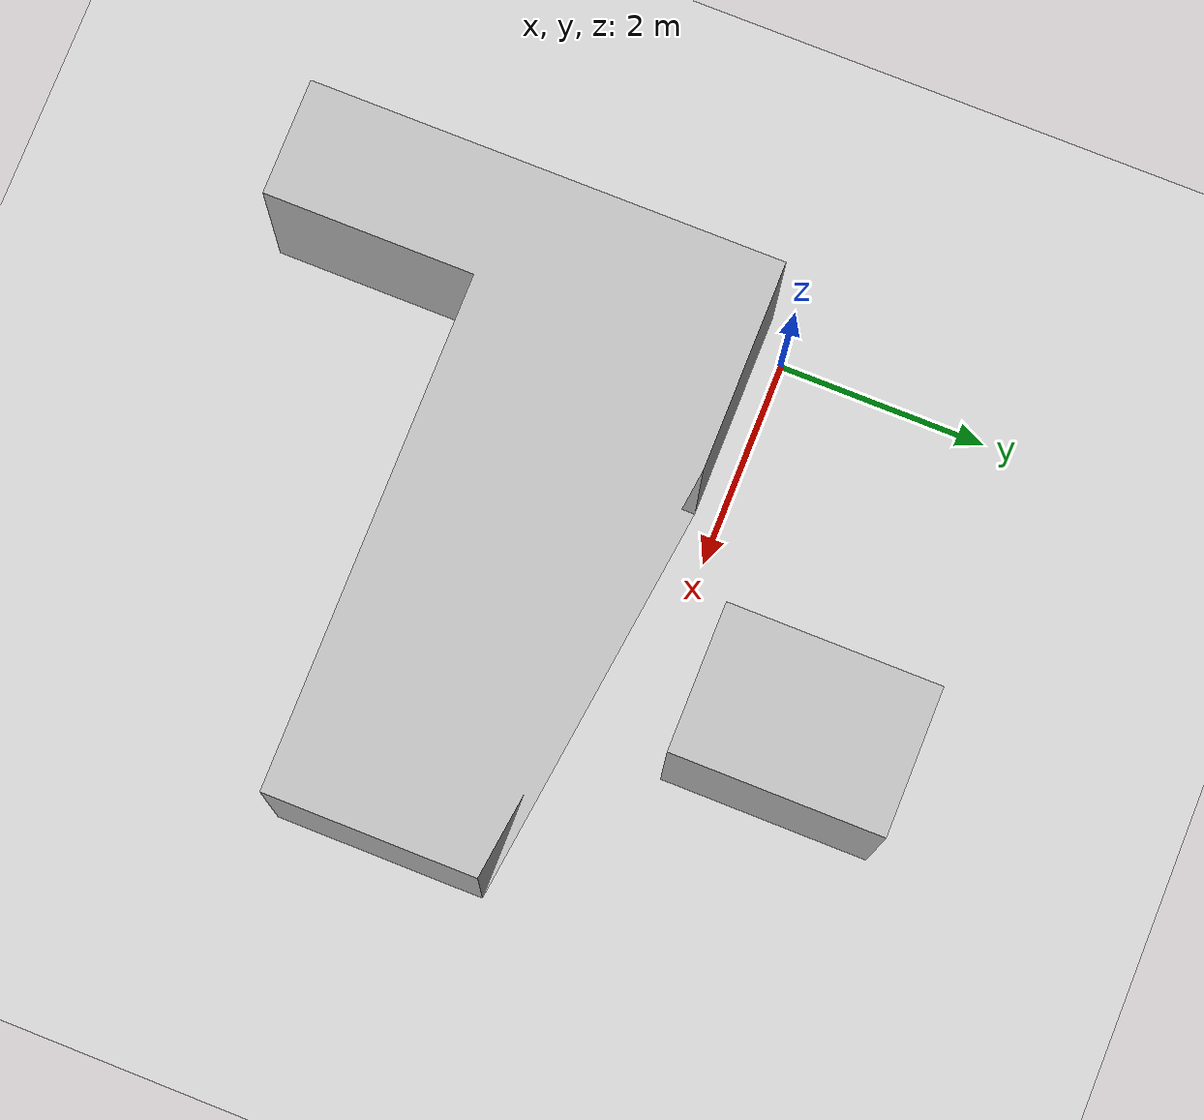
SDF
<?xml version="1.0" ?>
<sdf version="1.6">
  <world name="default">
    <plugin
      filename="gz-sim-physics-system"
      name="gz::sim::systems::Physics">
    </plugin>
    <plugin
      filename="gz-sim-user-commands-system"
      name="gz::sim::systems::UserCommands">
    </plugin>
    <plugin
      filename="gz-sim-scene-broadcaster-system"
      name="gz::sim::systems::SceneBroadcaster">
    </plugin>
    <plugin
      filename="gz-sim-sensors-system"
      name="gz::sim::systems::Sensors">
      <render_engine>ogre2</render_engine>
    </plugin>
    <plugin
      filename="gz-sim-imu-system"
      name="gz::sim::systems::Imu">
    </plugin>

    <light type="directional" name="sun">
      <cast_shadows>true</cast_shadows>
      <pose>0 0 10 0 0 0</pose>
    </light>

    <include>
      <uri>https://fuel.gazebosim.org/1.0/OpenRobotics/models/Ground Plane</uri>
    </include>

    <include>
      <uri>model://turtlebot3_openmaze</uri>
      <pose>6.84 -0.24 0 0 0 0</pose>
    </include>

  </world>
</sdf>

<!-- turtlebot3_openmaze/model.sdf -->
<sdf version="1.6">
  <model name="turtlebot3_openmaze">
    <static>true</static>
    <link name="link">
      <visual name="visual">
        <geometry>
          <mesh>
            <uri>meshes/OpenMaze.obj</uri>
            <scale>2 2 2</scale>
          </mesh>
        </geometry>
      </visual>
      <collision name="collision">
        <geometry>
          <mesh>
            <uri>meshes/OpenMaze.obj</uri>
            <scale>2 2 2</scale>
          </mesh>
        </geometry>
      </collision>
    </link>
  </model>
</sdf>
